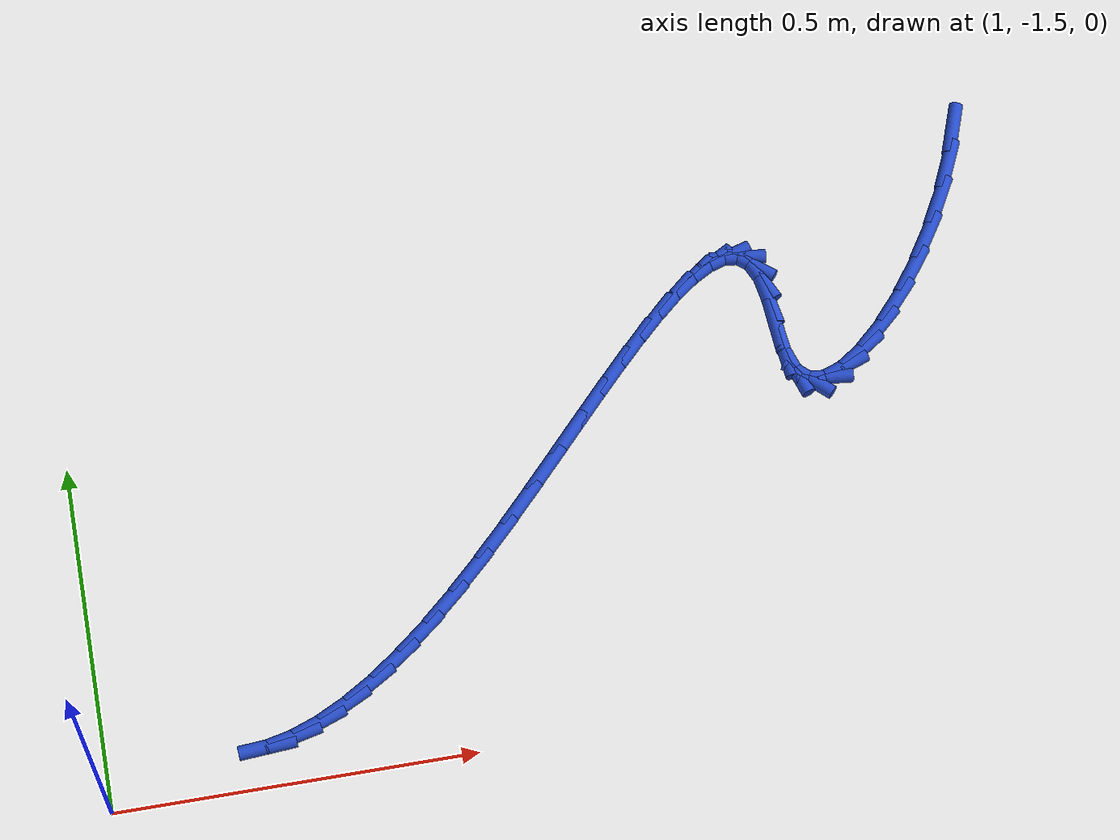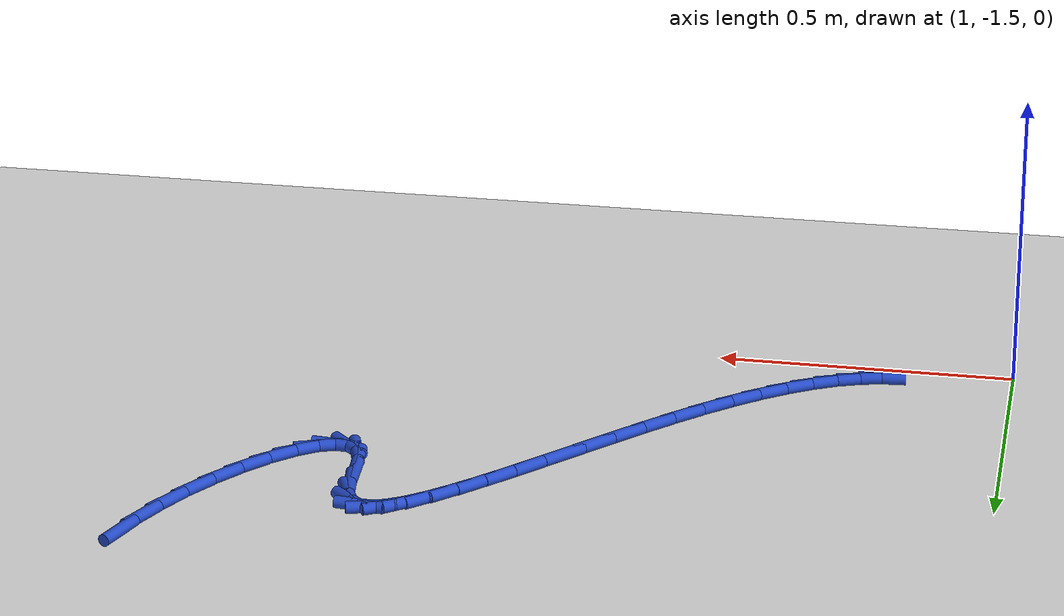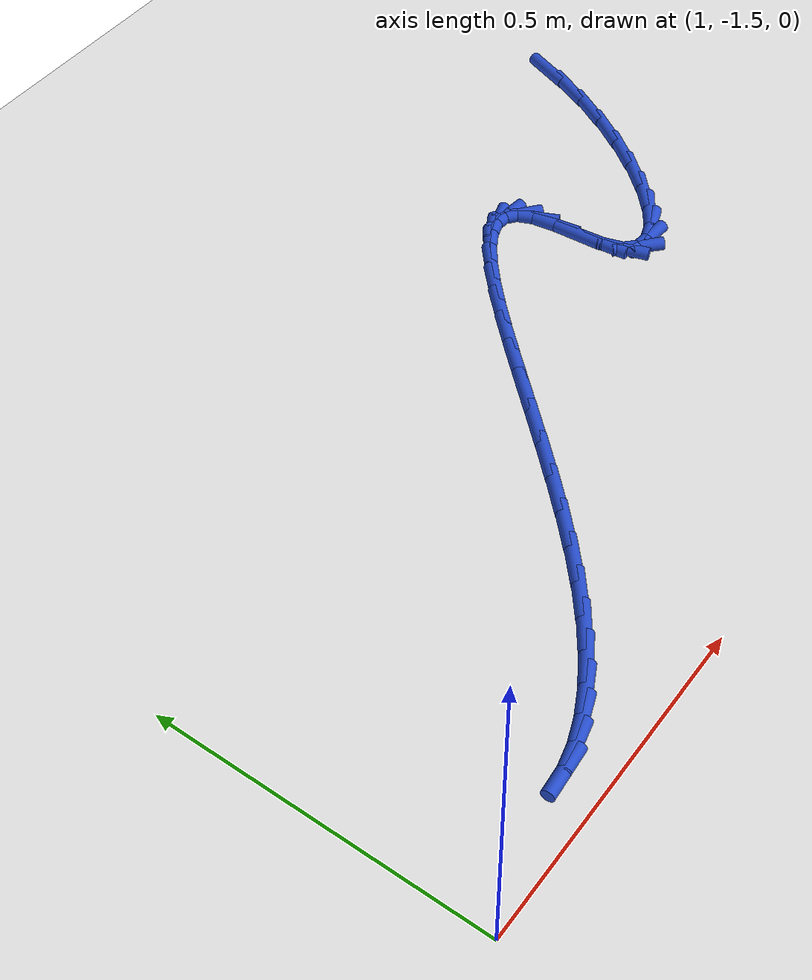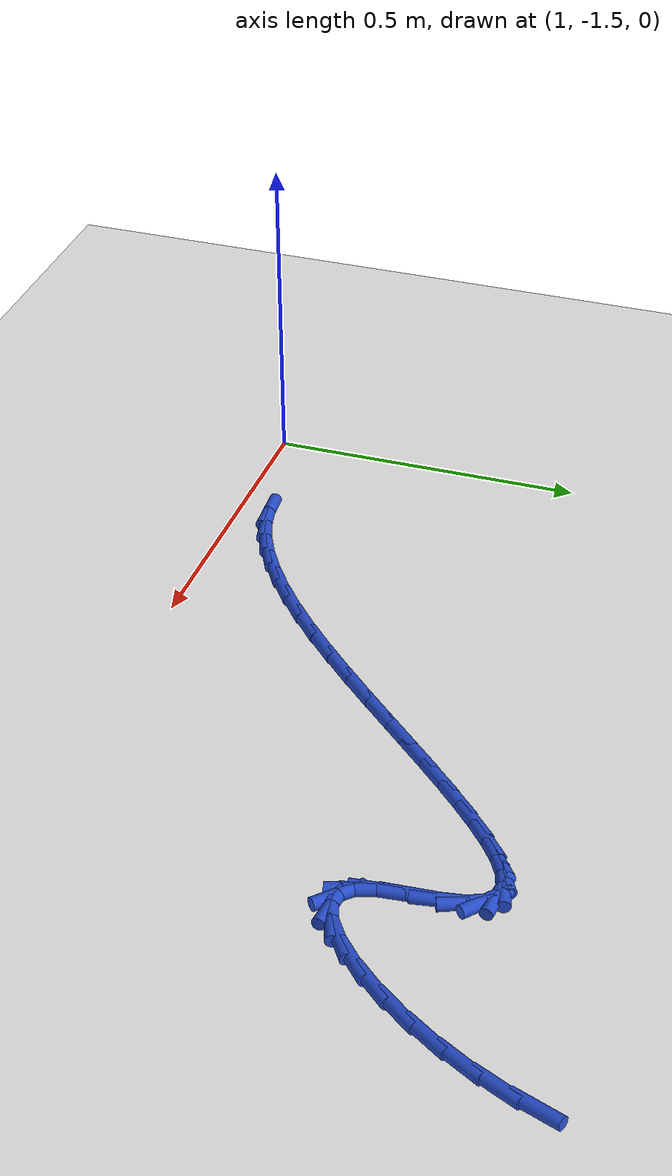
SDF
<sdf version="1.6">
 <world name="default">
  <model name="ground_plane">
   <static>1</static>
   <link name="link">
    <collision name="collision">
     <geometry><plane><normal>0 0 1</normal><size>100 100</size></plane></geometry>
     <surface><friction><ode><mu>100</mu><mu2>50</mu2></ode></friction></surface>
    </collision>
    <visual name="visual">
     <cast_shadows>0</cast_shadows>
     <geometry><plane><normal>0 0 1</normal><size>100 100</size></plane></geometry>
     <material>
      <script><uri>file://media/materials/scripts/gazebo.material</uri><name>Gazebo/WhiteGlow</name></script>
     </material>
    </visual>
   </link>
  </model>
  <model name="line">
   <link name="link_132">
    <pose>2.328567143681039 -0.6946336856829118 0.01 0 1.57 1.2197140216054936</pose>
    <collision name="collision">
     <geometry><cylinder><radius>0.01</radius><length>0.08</length></cylinder></geometry>
    </collision>
    <visual name="visual">
     <material>
      <script><name>Gazebo/Blue</name><uri>file://media/materials/scripts/gazebo.material</uri></script>
     </material>
     <geometry><cylinder><radius>0.01</radius><length>0.08</length></cylinder></geometry>
    </visual>
   </link>
   <link name="link_133">
    <pose>2.3084880204295244 -0.7494564074383964 0.01 0 1.57 1.1358520800268408</pose>
    <collision name="collision">
     <geometry><cylinder><radius>0.01</radius><length>0.08</length></cylinder></geometry>
    </collision>
    <visual name="visual">
     <material>
      <script><name>Gazebo/Blue</name><uri>file://media/materials/scripts/gazebo.material</uri></script>
     </material>
     <geometry><cylinder><radius>0.01</radius><length>0.08</length></cylinder></geometry>
    </visual>
   </link>
   <link name="link_134">
    <pose>2.283350095164068 -0.8035608088945114 0.01 0 1.57 1.0620982027712769</pose>
    <collision name="collision">
     <geometry><cylinder><radius>0.01</radius><length>0.08</length></cylinder></geometry>
    </collision>
    <visual name="visual">
     <material>
      <script><name>Gazebo/Blue</name><uri>file://media/materials/scripts/gazebo.material</uri></script>
     </material>
     <geometry><cylinder><radius>0.01</radius><length>0.08</length></cylinder></geometry>
    </visual>
   </link>
   <link name="link_135">
    <pose>2.254362804829694 -0.8555418927585339 0.01 0 1.57 0.9924950437555327</pose>
    <collision name="collision">
     <geometry><cylinder><radius>0.01</radius><length>0.08</length></cylinder></geometry>
    </collision>
    <visual name="visual">
     <material>
      <script><name>Gazebo/Blue</name><uri>file://media/materials/scripts/gazebo.material</uri></script>
     </material>
     <geometry><cylinder><radius>0.01</radius><length>0.08</length></cylinder></geometry>
    </visual>
   </link>
   <link name="link_136">
    <pose>2.222735586371429 -0.903994661737737 0.01 0 1.57 0.9211746639034928</pose>
    <collision name="collision">
     <geometry><cylinder><radius>0.01</radius><length>0.08</length></cylinder></geometry>
    </collision>
    <visual name="visual">
     <material>
      <script><name>Gazebo/Blue</name><uri>file://media/materials/scripts/gazebo.material</uri></script>
     </material>
     <geometry><cylinder><radius>0.01</radius><length>0.08</length></cylinder></geometry>
    </visual>
   </link>
   <link name="link_137">
    <pose>2.1896778767342964 -0.947514118539398 0.01 0 1.57 0.8407260883960264</pose>
    <collision name="collision">
     <geometry><cylinder><radius>0.01</radius><length>0.08</length></cylinder></geometry>
    </collision>
    <visual name="visual">
     <material>
      <script><name>Gazebo/Blue</name><uri>file://media/materials/scripts/gazebo.material</uri></script>
     </material>
     <geometry><cylinder><radius>0.01</radius><length>0.08</length></cylinder></geometry>
    </visual>
   </link>
   <link name="link_138">
    <pose>2.156399112863321 -0.9846952658707923 0.01 0 1.57 0.7392197284463716</pose>
    <collision name="collision">
     <geometry><cylinder><radius>0.01</radius><length>0.08</length></cylinder></geometry>
    </collision>
    <visual name="visual">
     <material>
      <script><name>Gazebo/Blue</name><uri>file://media/materials/scripts/gazebo.material</uri></script>
     </material>
     <geometry><cylinder><radius>0.01</radius><length>0.08</length></cylinder></geometry>
    </visual>
   </link>
   <link name="link_139">
    <pose>2.124108731703528 -1.014133106439196 0.01 0 1.57 0.5932257217751685</pose>
    <collision name="collision">
     <geometry><cylinder><radius>0.01</radius><length>0.08</length></cylinder></geometry>
    </collision>
    <visual name="visual">
     <material>
      <script><name>Gazebo/Blue</name><uri>file://media/materials/scripts/gazebo.material</uri></script>
     </material>
     <geometry><cylinder><radius>0.01</radius><length>0.08</length></cylinder></geometry>
    </visual>
   </link>
   <link name="link_140">
    <pose>2.094016170199941 -1.0344226429518852 0.01 0 1.57 0.34984584573544075</pose>
    <collision name="collision">
     <geometry><cylinder><radius>0.01</radius><length>0.08</length></cylinder></geometry>
    </collision>
    <visual name="visual">
     <material>
      <script><name>Gazebo/Blue</name><uri>file://media/materials/scripts/gazebo.material</uri></script>
     </material>
     <geometry><cylinder><radius>0.01</radius><length>0.08</length></cylinder></geometry>
    </visual>
   </link>
   <link name="link_141">
    <pose>2.0673308652975857 -1.0441588781161344 0.01 0 1.57 -0.10035065254830909</pose>
    <collision name="collision">
     <geometry><cylinder><radius>0.01</radius><length>0.08</length></cylinder></geometry>
    </collision>
    <visual name="visual">
     <material>
      <script><name>Gazebo/Blue</name><uri>file://media/materials/scripts/gazebo.material</uri></script>
     </material>
     <geometry><cylinder><radius>0.01</radius><length>0.08</length></cylinder></geometry>
    </visual>
   </link>
   <link name="link_142">
    <pose>2.045262253941486 -1.0419368146392196 0.01 0 1.57 -0.7647549748087352</pose>
    <collision name="collision">
     <geometry><cylinder><radius>0.01</radius><length>0.08</length></cylinder></geometry>
    </collision>
    <visual name="visual">
     <material>
      <script><name>Gazebo/Blue</name><uri>file://media/materials/scripts/gazebo.material</uri></script>
     </material>
     <geometry><cylinder><radius>0.01</radius><length>0.08</length></cylinder></geometry>
    </visual>
   </link>
   <link name="link_143">
    <pose>2.0290197730766684 -1.0263514552284174 0.01 0 1.57 -1.270293224036896</pose>
    <collision name="collision">
     <geometry><cylinder><radius>0.01</radius><length>0.08</length></cylinder></geometry>
    </collision>
    <visual name="visual">
     <material>
      <script><name>Gazebo/Blue</name><uri>file://media/materials/scripts/gazebo.material</uri></script>
     </material>
     <geometry><cylinder><radius>0.01</radius><length>0.08</length></cylinder></geometry>
    </visual>
   </link>
   <link name="link_144">
    <pose>2.0196886582435725 -0.9962401650439808 0.01 0 1.57 -1.4738586684485124</pose>
    <collision name="collision">
     <geometry><cylinder><radius>0.01</radius><length>0.08</length></cylinder></geometry>
    </collision>
    <visual name="visual">
     <material>
      <script><name>Gazebo/Blue</name><uri>file://media/materials/scripts/gazebo.material</uri></script>
     </material>
     <geometry><cylinder><radius>0.01</radius><length>0.08</length></cylinder></geometry>
    </visual>
   </link>
   <link name="link_145">
    <pose>2.0157324498494638 -0.9555561971507793 0.01 0 1.57 -1.50923800621178</pose>
    <collision name="collision">
     <geometry><cylinder><radius>0.01</radius><length>0.08</length></cylinder></geometry>
    </collision>
    <visual name="visual">
     <material>
      <script><name>Gazebo/Blue</name><uri>file://media/materials/scripts/gazebo.material</uri></script>
     </material>
     <geometry><cylinder><radius>0.01</radius><length>0.08</length></cylinder></geometry>
    </visual>
   </link>
   <link name="link_146">
    <pose>2.0131172300035183 -0.913126260927402 0.01 0 1.57 -1.4201075239477807</pose>
    <collision name="collision">
     <geometry><cylinder><radius>0.01</radius><length>0.08</length></cylinder></geometry>
    </collision>
    <visual name="visual">
     <material>
      <script><name>Gazebo/Blue</name><uri>file://media/materials/scripts/gazebo.material</uri></script>
     </material>
     <geometry><cylinder><radius>0.01</radius><length>0.08</length></cylinder></geometry>
    </visual>
   </link>
   <link name="link_147">
    <pose>2.0077617042864286 -0.87785537191845 0.01 0 1.57 -1.1574314882784615</pose>
    <collision name="collision">
     <geometry><cylinder><radius>0.01</radius><length>0.08</length></cylinder></geometry>
    </collision>
    <visual name="visual">
     <material>
      <script><name>Gazebo/Blue</name><uri>file://media/materials/scripts/gazebo.material</uri></script>
     </material>
     <geometry><cylinder><radius>0.01</radius><length>0.08</length></cylinder></geometry>
    </visual>
   </link>
   <link name="link_148">
    <pose>1.9974841494818085 -0.8544247403874157 0.01 0 1.57 -0.6852802273903228</pose>
    <collision name="collision">
     <geometry><cylinder><radius>0.01</radius><length>0.08</length></cylinder></geometry>
    </collision>
    <visual name="visual">
     <material>
      <script><name>Gazebo/Blue</name><uri>file://media/materials/scripts/gazebo.material</uri></script>
     </material>
     <geometry><cylinder><radius>0.01</radius><length>0.08</length></cylinder></geometry>
    </visual>
   </link>
   <link name="link_149">
    <pose>1.982503006610591 -0.8421786740560488 0.01 0 1.57 -0.10622252661731753</pose>
    <collision name="collision">
     <geometry><cylinder><radius>0.01</radius><length>0.08</length></cylinder></geometry>
    </collision>
    <visual name="visual">
     <material>
      <script><name>Gazebo/Blue</name><uri>file://media/materials/scripts/gazebo.material</uri></script>
     </material>
     <geometry><cylinder><radius>0.01</radius><length>0.08</length></cylinder></geometry>
    </visual>
   </link>
   <link name="link_150">
    <pose>1.9631905147603024 -0.8401195018432462 0.01 0 1.57 0.2973035084421542</pose>
    <collision name="collision">
     <geometry><cylinder><radius>0.01</radius><length>0.08</length></cylinder></geometry>
    </collision>
    <visual name="visual">
     <material>
      <script><name>Gazebo/Blue</name><uri>file://media/materials/scripts/gazebo.material</uri></script>
     </material>
     <geometry><cylinder><radius>0.01</radius><length>0.08</length></cylinder></geometry>
    </visual>
   </link>
   <link name="link_151">
    <pose>1.9399189130184682 -0.8472495526679047 0.01 0 1.57 0.5184133672728742</pose>
    <collision name="collision">
     <geometry><cylinder><radius>0.01</radius><length>0.08</length></cylinder></geometry>
    </collision>
    <visual name="visual">
     <material>
      <script><name>Gazebo/Blue</name><uri>file://media/materials/scripts/gazebo.material</uri></script>
     </material>
     <geometry><cylinder><radius>0.01</radius><length>0.08</length></cylinder></geometry>
    </visual>
   </link>
   <link name="link_152">
    <pose>1.9130604404726148 -0.8625711554489218 0.01 0 1.57 0.642663273010001</pose>
    <collision name="collision">
     <geometry><cylinder><radius>0.01</radius><length>0.08</length></cylinder></geometry>
    </collision>
    <visual name="visual">
     <material>
      <script><name>Gazebo/Blue</name><uri>file://media/materials/scripts/gazebo.material</uri></script>
     </material>
     <geometry><cylinder><radius>0.01</radius><length>0.08</length></cylinder></geometry>
    </visual>
   </link>
   <link name="link_153">
    <pose>1.8829873362102687 -0.8850866391051959 0.01 0 1.57 0.7172902169489517</pose>
    <collision name="collision">
     <geometry><cylinder><radius>0.01</radius><length>0.08</length></cylinder></geometry>
    </collision>
    <visual name="visual">
     <material>
      <script><name>Gazebo/Blue</name><uri>file://media/materials/scripts/gazebo.material</uri></script>
     </material>
     <geometry><cylinder><radius>0.01</radius><length>0.08</length></cylinder></geometry>
    </visual>
   </link>
   <link name="link_154">
    <pose>1.8500718393189566 -0.9137983325556229 0.01 0 1.57 0.7641098079618508</pose>
    <collision name="collision">
     <geometry><cylinder><radius>0.01</radius><length>0.08</length></cylinder></geometry>
    </collision>
    <visual name="visual">
     <material>
      <script><name>Gazebo/Blue</name><uri>file://media/materials/scripts/gazebo.material</uri></script>
     </material>
     <geometry><cylinder><radius>0.01</radius><length>0.08</length></cylinder></geometry>
    </visual>
   </link>
   <link name="link_155">
    <pose>1.8146861888862051 -0.9477085647191011 0.01 0 1.57 0.7936992848740374</pose>
    <collision name="collision">
     <geometry><cylinder><radius>0.01</radius><length>0.08</length></cylinder></geometry>
    </collision>
    <visual name="visual">
     <material>
      <script><name>Gazebo/Blue</name><uri>file://media/materials/scripts/gazebo.material</uri></script>
     </material>
     <geometry><cylinder><radius>0.01</radius><length>0.08</length></cylinder></geometry>
    </visual>
   </link>
   <link name="link_156">
    <pose>1.7772026239995407 -0.9858196645145276 0.01 0 1.57 0.8115343322677459</pose>
    <collision name="collision">
     <geometry><cylinder><radius>0.01</radius><length>0.08</length></cylinder></geometry>
    </collision>
    <visual name="visual">
     <material>
      <script><name>Gazebo/Blue</name><uri>file://media/materials/scripts/gazebo.material</uri></script>
     </material>
     <geometry><cylinder><radius>0.01</radius><length>0.08</length></cylinder></geometry>
    </visual>
   </link>
   <link name="link_157">
    <pose>1.7379933837464883 -1.0271339608608008 0.01 0 1.57 0.8205532434268286</pose>
    <collision name="collision">
     <geometry><cylinder><radius>0.01</radius><length>0.08</length></cylinder></geometry>
    </collision>
    <visual name="visual">
     <material>
      <script><name>Gazebo/Blue</name><uri>file://media/materials/scripts/gazebo.material</uri></script>
     </material>
     <geometry><cylinder><radius>0.01</radius><length>0.08</length></cylinder></geometry>
    </visual>
   </link>
   <link name="link_158">
    <pose>1.6974307072145762 -1.0706537826768163 0.01 0 1.57 0.8222858544672962</pose>
    <collision name="collision">
     <geometry><cylinder><radius>0.01</radius><length>0.08</length></cylinder></geometry>
    </collision>
    <visual name="visual">
     <material>
      <script><name>Gazebo/Blue</name><uri>file://media/materials/scripts/gazebo.material</uri></script>
     </material>
     <geometry><cylinder><radius>0.01</radius><length>0.08</length></cylinder></geometry>
    </visual>
   </link>
   <link name="link_159">
    <pose>1.65588683349133 -1.115381458881472 0.01 0 1.57 0.8173657466137247</pose>
    <collision name="collision">
     <geometry><cylinder><radius>0.01</radius><length>0.08</length></cylinder></geometry>
    </collision>
    <visual name="visual">
     <material>
      <script><name>Gazebo/Blue</name><uri>file://media/materials/scripts/gazebo.material</uri></script>
     </material>
     <geometry><cylinder><radius>0.01</radius><length>0.08</length></cylinder></geometry>
    </visual>
   </link>
   <link name="link_160">
    <pose>1.6137340016642763 -1.1603193183936662 0.01 0 1.57 0.805742276397437</pose>
    <collision name="collision">
     <geometry><cylinder><radius>0.01</radius><length>0.08</length></cylinder></geometry>
    </collision>
    <visual name="visual">
     <material>
      <script><name>Gazebo/Blue</name><uri>file://media/materials/scripts/gazebo.material</uri></script>
     </material>
     <geometry><cylinder><radius>0.01</radius><length>0.08</length></cylinder></geometry>
    </visual>
   </link>
   <link name="link_161">
    <pose>1.5713444508209409 -1.204469690132295 0.01 0 1.57 0.7867120731310788</pose>
    <collision name="collision">
     <geometry><cylinder><radius>0.01</radius><length>0.08</length></cylinder></geometry>
    </collision>
    <visual name="visual">
     <material>
      <script><name>Gazebo/Blue</name><uri>file://media/materials/scripts/gazebo.material</uri></script>
     </material>
     <geometry><cylinder><radius>0.01</radius><length>0.08</length></cylinder></geometry>
    </visual>
   </link>
   <link name="link_162">
    <pose>1.5290904200488498 -1.2468349030162584 0.01 0 1.57 0.758810334038034</pose>
    <collision name="collision">
     <geometry><cylinder><radius>0.01</radius><length>0.08</length></cylinder></geometry>
    </collision>
    <visual name="visual">
     <material>
      <script><name>Gazebo/Blue</name><uri>file://media/materials/scripts/gazebo.material</uri></script>
     </material>
     <geometry><cylinder><radius>0.01</radius><length>0.08</length></cylinder></geometry>
    </visual>
   </link>
   <link name="link_163">
    <pose>1.4873432024216102 -1.2864191829708764 0.01 0 1.57 0.7212083215483486</pose>
    <collision name="collision">
     <geometry><cylinder><radius>0.01</radius><length>0.08</length></cylinder></geometry>
    </collision>
    <visual name="visual">
     <material>
      <script><name>Gazebo/Blue</name><uri>file://media/materials/scripts/gazebo.material</uri></script>
     </material>
     <geometry><cylinder><radius>0.01</radius><length>0.08</length></cylinder></geometry>
    </visual>
   </link>
   <link name="link_164">
    <pose>1.4463631938026542 -1.322449133960306 0.01 0 1.57 0.6747046306412716</pose>
    <collision name="collision">
     <geometry><cylinder><radius>0.01</radius><length>0.08</length></cylinder></geometry>
    </collision>
    <visual name="visual">
     <material>
      <script><name>Gazebo/Blue</name><uri>file://media/materials/scripts/gazebo.material</uri></script>
     </material>
     <geometry><cylinder><radius>0.01</radius><length>0.08</length></cylinder></geometry>
    </visual>
   </link>
   <link name="link_165">
    <pose>1.406197305343106 -1.3545794528788044 0.01 0 1.57 0.6175810989163246</pose>
    <collision name="collision">
     <geometry><cylinder><radius>0.01</radius><length>0.08</length></cylinder></geometry>
    </collision>
    <visual name="visual">
     <material>
      <script><name>Gazebo/Blue</name><uri>file://media/materials/scripts/gazebo.material</uri></script>
     </material>
     <geometry><cylinder><radius>0.01</radius><length>0.08</length></cylinder></geometry>
    </visual>
   </link>
   <link name="link_166">
    <pose>1.3668681824665143 -1.3825134957789662 0.01 0 1.57 0.5472586439314199</pose>
    <collision name="collision">
     <geometry><cylinder><radius>0.01</radius><length>0.08</length></cylinder></geometry>
    </collision>
    <visual name="visual">
     <material>
      <script><name>Gazebo/Blue</name><uri>file://media/materials/scripts/gazebo.material</uri></script>
     </material>
     <geometry><cylinder><radius>0.01</radius><length>0.08</length></cylinder></geometry>
    </visual>
   </link>
   <link name="link_167">
    <pose>1.3283984705964325 -1.4059546187133822 0.01 0 1.57 0.460615039273719</pose>
    <collision name="collision">
     <geometry><cylinder><radius>0.01</radius><length>0.08</length></cylinder></geometry>
    </collision>
    <visual name="visual">
     <material>
      <script><name>Gazebo/Blue</name><uri>file://media/materials/scripts/gazebo.material</uri></script>
     </material>
     <geometry><cylinder><radius>0.01</radius><length>0.08</length></cylinder></geometry>
    </visual>
   </link>
   <link name="link_168">
    <pose>1.290810815156408 -1.4246061777346455 0.01 0 1.57 0.3542038689894415</pose>
    <collision name="collision">
     <geometry><cylinder><radius>0.01</radius><length>0.08</length></cylinder></geometry>
    </collision>
    <visual name="visual">
     <material>
      <script><name>Gazebo/Blue</name><uri>file://media/materials/scripts/gazebo.material</uri></script>
     </material>
     <geometry><cylinder><radius>0.01</radius><length>0.08</length></cylinder></geometry>
    </visual>
   </link>
   <link name="link_169">
    <pose>1.2541278615699922 -1.43817152889535 0.01 0 1.57 0.22497134401408495</pose>
    <collision name="collision">
     <geometry><cylinder><radius>0.01</radius><length>0.08</length></cylinder></geometry>
    </collision>
    <visual name="visual">
     <material>
      <script><name>Gazebo/Blue</name><uri>file://media/materials/scripts/gazebo.material</uri></script>
     </material>
     <geometry><cylinder><radius>0.01</radius><length>0.08</length></cylinder></geometry>
    </visual>
   </link>
   <link name="link_170">
    <pose>1.2183722552607352 -1.4463540282480887 0.01 0 1.57 0.07179020390622406</pose>
    <collision name="collision">
     <geometry><cylinder><radius>0.01</radius><length>0.08</length></cylinder></geometry>
    </collision>
    <visual name="visual">
     <material>
      <script><name>Gazebo/Blue</name><uri>file://media/materials/scripts/gazebo.material</uri></script>
     </material>
     <geometry><cylinder><radius>0.01</radius><length>0.08</length></cylinder></geometry>
    </visual>
   </link>
  </model>
 </world>
</sdf>
